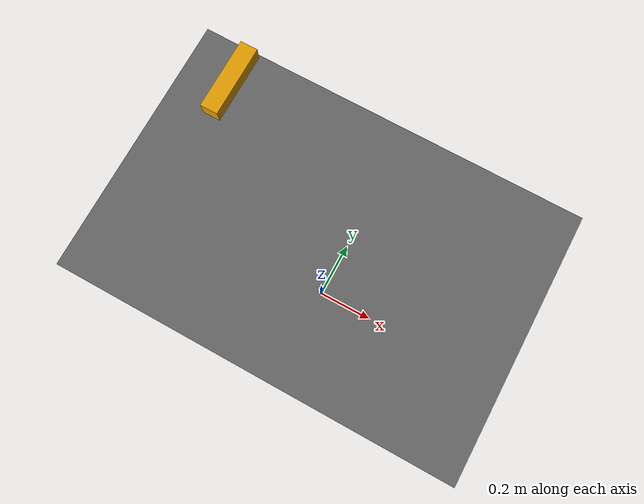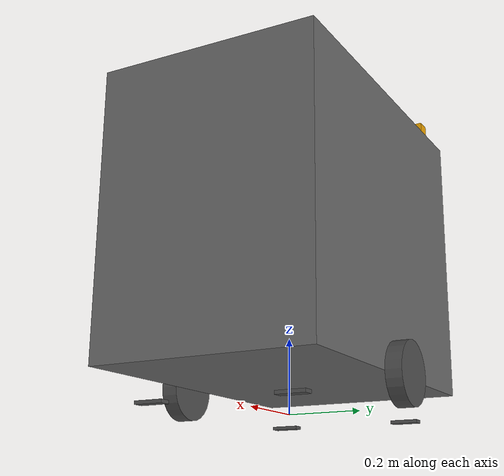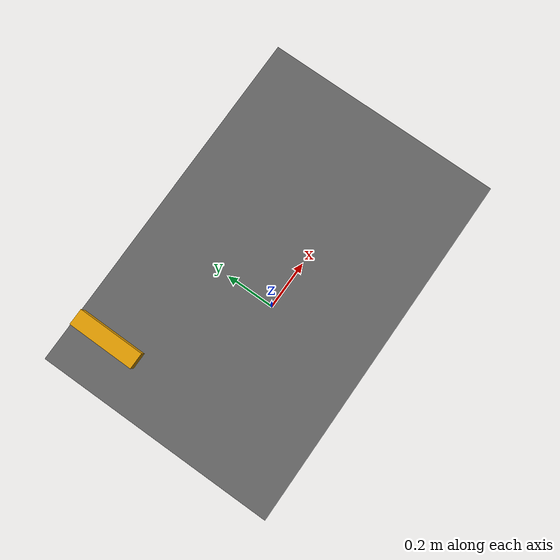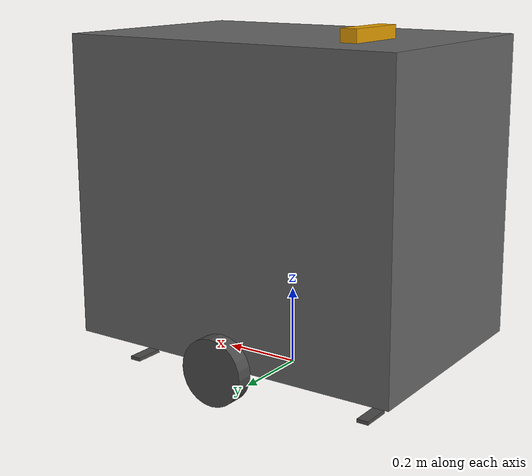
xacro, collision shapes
<?xml version="1.0" ?>
<robot name="moving_base" version="1.0">
  <material name="grey">
    <color rgba="0.7 0.7 0.7 1.0"/>
  </material>
  <material name="dark">
    <color rgba="0.3 0.3 0.3 1.0"/>
  </material>
  <material name="light_black">
    <color rgba="0.4 0.4 0.4 1.0"/>
  </material>
  <gazebo reference="base_link_mb">
    <sensor name="base_link_mb" type="contact">
      <update_rate>1000.0</update_rate>
      <always_on>true</always_on>
      <contact>
        <collision>base_footprint_fixed_joint_lump__base_link_collision</collision>
      </contact>
      <plugin filename="libgazebo_ros_bumper.so" name="base_link_contact_sensor_plugin">
        <bumperTopicName>contact</bumperTopicName>
        <frameName>world</frameName>
      </plugin>
    </sensor>
  </gazebo>
  <gazebo reference="base_link_mb">
    <material>Gazebo/DarkGrey</material>
  </gazebo>
  <gazebo reference="wheel_left_link">
    <mu1 value="1.0"/>
    <mu2 value="1.0"/>
    <kp value="10000000.0"/>
    <kd value="1.0"/>
    <minDepth>0.001</minDepth>
    <maxVel>0.1</maxVel>
    <fdir1>1 0 0</fdir1>
    <material>Gazebo/FlatBlack</material>
  </gazebo>
  <gazebo reference="wheel_right_link">
    <mu1 value="1.0"/>
    <mu2 value="1.0"/>
    <kp value="10000000.0"/>
    <kd value="1.0"/>
    <minDepth>0.001</minDepth>
    <maxVel>0.1</maxVel>
    <fdir1>1 0 0</fdir1>
    <material>Gazebo/FlatBlack</material>
  </gazebo>
  <gazebo reference="caster_back_right_link">
    <mu1>0.01</mu1>
    <mu2>0.01</mu2>
    <kp>1000000.0</kp>
    <kd>100.0</kd>
    <minDepth>0.001</minDepth>
    <maxVel>1.0</maxVel>
    <material>Gazebo/FlatBlack</material>
  </gazebo>
  <gazebo reference="caster_back_left_link">
    <mu1>0.01</mu1>
    <mu2>0.01</mu2>
    <kp>1000000.0</kp>
    <kd>100.0</kd>
    <minDepth>0.001</minDepth>
    <maxVel>1.0</maxVel>
    <material>Gazebo/FlatBlack</material>
  </gazebo>
  <gazebo reference="caster_front_right_link">
    <mu1>0.01</mu1>
    <mu2>0.01</mu2>
    <kp>1000000.0</kp>
    <kd>100.0</kd>
    <minDepth>0.001</minDepth>
    <maxVel>1.0</maxVel>
    <material>Gazebo/FlatBlack</material>
  </gazebo>
  <gazebo reference="caster_front_left_link">
    <mu1>0.01</mu1>
    <mu2>0.01</mu2>
    <kp>1000000.0</kp>
    <kd>100.0</kd>
    <minDepth>0.001</minDepth>
    <maxVel>1.0</maxVel>
    <material>Gazebo/FlatBlack</material>
  </gazebo>
  <gazebo reference="imu_link">
    <sensor name="imu" type="imu">
      <always_on>true</always_on>
      <visualize>false</visualize>
    </sensor>
    <material>Gazebo/Grey</material>
  </gazebo>
  <gazebo>
    <plugin filename="libgazebo_ros_diff_drive.so" name="moving_base_controller">
      <commandTopic>cmd_vel</commandTopic>
      <odometryTopic>odom</odometryTopic>
      <odometryFrame>odom</odometryFrame>
      <odometrySource>world</odometrySource>
      <publishOdomTF>true</publishOdomTF>
      <robotBaseFrame>base_footprint</robotBaseFrame>
      <publishWheelTF>false</publishWheelTF>
      <publishTf>true</publishTf>
      <publishWheelJointState>true</publishWheelJointState>
      <legacyMode>false</legacyMode>
      <updateRate>30</updateRate>
      <leftJoint>wheel_left_joint</leftJoint>
      <rightJoint>wheel_right_joint</rightJoint>
      <wheelSeparation>0.650</wheelSeparation>
      <wheelDiameter>0.168</wheelDiameter>
      <wheelAcceleration>1</wheelAcceleration>
      <wheelTorque>50</wheelTorque>
      <rosDebugLevel>na</rosDebugLevel>
    </plugin>
  </gazebo>
  <gazebo>
    <plugin filename="libgazebo_ros_imu.so" name="imu_plugin">
      <alwaysOn>true</alwaysOn>
      <bodyName>imu_link</bodyName>
      <frameName>imu_link</frameName>
      <topicName>imu</topicName>
      <serviceName>imu_service</serviceName>
      <gaussianNoise>0.0</gaussianNoise>
      <updateRate>0</updateRate>
      <imu>
        <noise>
          <type>gaussian</type>
          <rate>
            <mean>0.0</mean>
            <stddev>2e-4</stddev>
            <bias_mean>0.0000075</bias_mean>
            <bias_stddev>0.0000008</bias_stddev>
          </rate>
          <accel>
            <mean>0.0</mean>
            <stddev>1.7e-2</stddev>
            <bias_mean>0.1</bias_mean>
            <bias_stddev>0.001</bias_stddev>
          </accel>
        </noise>
      </imu>
    </plugin>
  </gazebo>
  <joint name="camera_mb_joint" type="fixed">
    <origin xyz="-0.3417345036929093 0.14581973548828592 0.8711514337998042" rpy="-0.00041233477833903736 0.0008236868957589115 3.135073951633916"/>
    <parent link="base_link_mb"/>
    <child link="camera_mb_link"/>
  </joint>
  <link name="camera_mb_link">
    <inertial>
      <origin xyz="0.0 0.0 0.0" rpy="0 0 0"/>
      <mass value="0.564"/>
      <inertia ixx="0.003881243" ixy="0.0" ixz="0.0" iyy="0.00049894" iyz="0.0" izz="0.003879257"/>
    </inertial>
    <collision>
      <origin xyz="-0.01 -0.06 0.0" rpy="0.0 0.0 0.0"/>
      <geometry>
        <box size="0.04 0.165 0.03"/>
      </geometry>
    </collision>
  </link>
  <gazebo reference="camera_mb_link">
    <selfCollide>false</selfCollide>
  </gazebo>
  <joint name="camera_mb_rgb_joint" type="fixed">
    <origin xyz="0.0 -0.045 0.0" rpy="0.0 0.0 0.0"/>
    <parent link="camera_mb_link"/>
    <child link="camera_mb_rgb_frame"/>
  </joint>
  <link name="camera_mb_rgb_frame"/>
  <joint name="camera_mb_rgb_optical_joint" type="fixed">
    <origin xyz="0.0 0.0 0.0" rpy="-1.5707963267948966 0.0 -1.5707963267948966"/>
    <parent link="camera_mb_rgb_frame"/>
    <child link="camera_mb_rgb_optical_frame"/>
  </joint>
  <link name="camera_mb_rgb_optical_frame">
    <visual>
      <origin xyz="0.0 0.0 -0.03" rpy="1.5707963267948966 0.0 0.0"/>
      <geometry>
        <mesh filename="package://t2rgb_description/meshes/sensors/astra2.dae" scale="1.0 1.0 1.0"/>
      </geometry>
    </visual>
  </link>
  <joint name="camera_mb_depth_joint" type="fixed">
    <origin xyz="0.0 -0.02 0.0" rpy="0.0 0.0 0.0"/>
    <parent link="camera_mb_link"/>
    <child link="camera_mb_depth_frame"/>
  </joint>
  <link name="camera_mb_depth_frame"/>
  <joint name="camera_mb_depth_optical_joint" type="fixed">
    <origin xyz="0.0 0.0 0.0" rpy="-1.5707963267948966 0.0 -1.5707963267948966"/>
    <parent link="camera_mb_depth_frame"/>
    <child link="camera_mb_depth_optical_frame"/>
  </joint>
  <link name="camera_mb_depth_optical_frame"/>
  <gazebo reference="camera_mb_depth_frame">
    <sensor name="camera" type="depth">
      <always_on>true</always_on>
      <update_rate>20.0</update_rate>
      <camera>
        <horizontal_fov>1.0471975511965976</horizontal_fov>
        <image>
          <format>B8G8R8</format>
          <width>640</width>
          <height>480</height>
        </image>
        <clip>
          <near>0.10</near>
          <far>8.0</far>
        </clip>
      </camera>
      <plugin filename="libgazebo_ros_openni_kinect.so" name="camera_mb_camera_controller">
        <cameraName>camera_mb</cameraName>
        <alwaysOn>true</alwaysOn>
        <updateRate>10</updateRate>
        <imageTopicName>rgb/image_raw</imageTopicName>
        <depthImageTopicName>depth/image_raw</depthImageTopicName>
        <pointCloudTopicName>depth/points</pointCloudTopicName>
        <cameraInfoTopicName>rgb/camera_info</cameraInfoTopicName>
        <depthImageCameraInfoTopicName>depth/camera_info</depthImageCameraInfoTopicName>
        <frameName>camera_mb_depth_optical_frame</frameName>
        <baseline>0.1</baseline>
        <distortion_k1>0.0</distortion_k1>
        <distortion_k2>0.0</distortion_k2>
        <distortion_k3>0.0</distortion_k3>
        <distortion_t1>0.0</distortion_t1>
        <distortion_t2>0.0</distortion_t2>
        <pointCloudCutoff>0.4</pointCloudCutoff>
      </plugin>
    </sensor>
  </gazebo>
  <link name="base_footprint"/>
  <joint name="base_joint" type="fixed">
    <origin xyz="0.0 0.0 0.01" rpy="0.0 0.0 0.0"/>
    <parent link="base_footprint"/>
    <child link="base_link_mb"/>
  </joint>
  <link name="base_link_mb">
    <visual>
      <origin xyz="-0.43 -0.33 0.03" rpy="1.57 0.0 1.57"/>
      <geometry>
        <mesh filename="package://ur_e_description/meshes/moving_base/moving_base.STL" scale="0.001 0.001 0.001"/>
      </geometry>
      <material name="light_black"/>
    </visual>
    <collision>
      <origin xyz="0.0 0.0 0.459" rpy="0.0 0.0 0.0"/>
      <geometry>
        <box size="0.9 0.6 0.77"/>
      </geometry>
    </collision>
  </link>
  <link name="inertial_link">
    <inertial>
      <origin xyz="-0.00065 -0.085 0.062" rpy="0 0 0"/>
      <mass value="100.0"/>
      <inertia ixx="0.6022" ixy="-0.02364" ixz="-0.1197" iyy="1.7386" iyz="-0.001544" izz="2.0296"/>
    </inertial>
  </link>
  <joint name="inertial_joint" type="fixed">
    <origin xyz="0.0 0.0 0.0" rpy="0.0 0.0 0.0"/>
    <parent link="base_link_mb"/>
    <child link="inertial_link"/>
  </joint>
  <joint name="wheel_left_joint" type="continuous">
    <origin xyz="0.0 0.325 0.074" rpy="-1.57 0.0 0.0"/>
    <axis xyz="0.0 0.0 1.0"/>
    <parent link="base_link_mb"/>
    <child link="wheel_left_link"/>
  </joint>
  <link name="wheel_left_link">
    <inertial>
      <origin xyz="0.0 0.0 0.0" rpy="0 0 0"/>
      <mass value="2.637"/>
      <inertia ixx="0.02467" ixy="0.0" ixz="0.0" iyy="0.04411" iyz="0.0" izz="0.02467"/>
    </inertial>
    <visual>
      <origin xyz="0.0 0.0 -0.055" rpy="-1.57 0.0 0.0"/>
      <geometry>
        <mesh filename="package://ur_e_description/meshes/wheels/left_tire.stl" scale="0.0025 0.0025 0.0025"/>
      </geometry>
      <material name="dark"/>
    </visual>
    <collision>
      <origin xyz="0.0 0.0 0.0" rpy="0.0 0.0 0.0"/>
      <geometry>
        <cylinder radius="0.084" length="0.044"/>
      </geometry>
    </collision>
  </link>
  <joint name="wheel_right_joint" type="continuous">
    <origin xyz="0.0 -0.325 0.074" rpy="-1.57 0.0 0.0"/>
    <axis xyz="0.0 0.0 1.0"/>
    <parent link="base_link_mb"/>
    <child link="wheel_right_link"/>
  </joint>
  <link name="wheel_right_link">
    <inertial>
      <origin xyz="0.0 0.0 0.0" rpy="0 0 0"/>
      <mass value="2.637"/>
      <inertia ixx="0.02467" ixy="0.0" ixz="0.0" iyy="0.04411" iyz="0.0" izz="0.02467"/>
    </inertial>
    <visual>
      <origin xyz="0.0 0.0 0.055" rpy="1.57 0.0 0.0"/>
      <geometry>
        <mesh filename="package://ur_e_description/meshes/wheels/left_tire.stl" scale="0.0025 0.0025 0.0025"/>
      </geometry>
      <material name="dark"/>
    </visual>
    <collision>
      <origin xyz="0.0 0.0 0.0" rpy="0.0 0.0 0.0"/>
      <geometry>
        <cylinder radius="0.084" length="0.044"/>
      </geometry>
    </collision>
  </link>
  <joint name="caster_back_right_joint" type="fixed">
    <origin xyz="-0.345 -0.19 -0.004" rpy="-1.57 0.0 0.0"/>
    <parent link="base_link_mb"/>
    <child link="caster_back_right_link"/>
  </joint>
  <link name="caster_back_right_link">
    <inertial>
      <origin xyz="0.0 0.0 0.0" rpy="0 0 0"/>
      <mass value="0.005"/>
      <inertia ixx="0.001" ixy="0.0" ixz="0.0" iyy="0.001" iyz="0.0" izz="0.001"/>
    </inertial>
    <visual>
      <origin xyz="0.027 -0.06 0.0" rpy="1.57 0.0 0.0"/>
      <geometry>
        <mesh filename="package://ur_e_description/meshes/wheels/left_tire.stl" scale="0.002 0.002 0.002"/>
      </geometry>
      <material name="dark"/>
    </visual>
    <collision>
      <origin xyz="0.0 0.001 0.0" rpy="0.0 0.0 0.0"/>
      <geometry>
        <box size="0.03 0.009 0.078"/>
      </geometry>
    </collision>
  </link>
  <joint name="caster_back_left_joint" type="fixed">
    <origin xyz="-0.345 0.19 -0.004" rpy="-1.57 0.0 0.0"/>
    <parent link="base_link_mb"/>
    <child link="caster_back_left_link"/>
  </joint>
  <link name="caster_back_left_link">
    <inertial>
      <origin xyz="0.0 0.0 0.0" rpy="0 0 0"/>
      <mass value="0.005"/>
      <inertia ixx="0.001" ixy="0.0" ixz="0.0" iyy="0.001" iyz="0.0" izz="0.001"/>
    </inertial>
    <visual>
      <origin xyz="0.027 -0.06 0.0" rpy="-1.57 0.0 0.0"/>
      <geometry>
        <mesh filename="package://ur_e_description/meshes/wheels/left_tire.stl" scale="0.002 0.002 0.002"/>
      </geometry>
      <material name="dark"/>
    </visual>
    <collision>
      <origin xyz="0.0 0.001 0.0" rpy="0.0 0.0 0.0"/>
      <geometry>
        <box size="0.03 0.009 0.078"/>
      </geometry>
    </collision>
  </link>
  <joint name="caster_front_right_joint" type="fixed">
    <origin xyz="0.345 -0.19 -0.004" rpy="-1.57 0.0 0.0"/>
    <parent link="base_link_mb"/>
    <child link="caster_front_right_link"/>
  </joint>
  <link name="caster_front_right_link">
    <inertial>
      <origin xyz="0.0 0.0 0.0" rpy="0 0 0"/>
      <mass value="0.005"/>
      <inertia ixx="0.001" ixy="0.0" ixz="0.0" iyy="0.001" iyz="0.0" izz="0.001"/>
    </inertial>
    <visual>
      <origin xyz="0.0 -0.06 0.0" rpy="1.57 0.0 0.0"/>
      <geometry>
        <mesh filename="package://ur_e_description/meshes/wheels/left_tire.stl" scale="0.002 0.002 0.002"/>
      </geometry>
      <material name="dark"/>
    </visual>
    <collision>
      <origin xyz="0.0 0.001 0.0" rpy="0.0 0.0 0.0"/>
      <geometry>
        <box size="0.03 0.009 0.078"/>
      </geometry>
    </collision>
  </link>
  <joint name="caster_front_left_joint" type="fixed">
    <origin xyz="0.345 0.19 -0.004" rpy="-1.57 0.0 0.0"/>
    <parent link="base_link_mb"/>
    <child link="caster_front_left_link"/>
  </joint>
  <link name="caster_front_left_link">
    <inertial>
      <origin xyz="0.0 0.0 0.0" rpy="0 0 0"/>
      <mass value="0.005"/>
      <inertia ixx="0.001" ixy="0.0" ixz="0.0" iyy="0.001" iyz="0.0" izz="0.001"/>
    </inertial>
    <visual>
      <origin xyz="0.0 -0.06 0.0" rpy="-1.57 0.0 0.0"/>
      <geometry>
        <mesh filename="package://ur_e_description/meshes/wheels/left_tire.stl" scale="0.002 0.002 0.002"/>
      </geometry>
      <material name="dark"/>
    </visual>
    <collision>
      <origin xyz="0.0 0.001 0.0" rpy="0.0 0.0 0.0"/>
      <geometry>
        <box size="0.03 0.009 0.078"/>
      </geometry>
    </collision>
  </link>
  <joint name="imu_joint" type="fixed">
    <origin xyz="0.0 0.0 0.068" rpy="0.0 0.0 0.0"/>
    <parent link="base_link_mb"/>
    <child link="imu_link"/>
  </joint>
  <link name="imu_link"/>
</robot>
